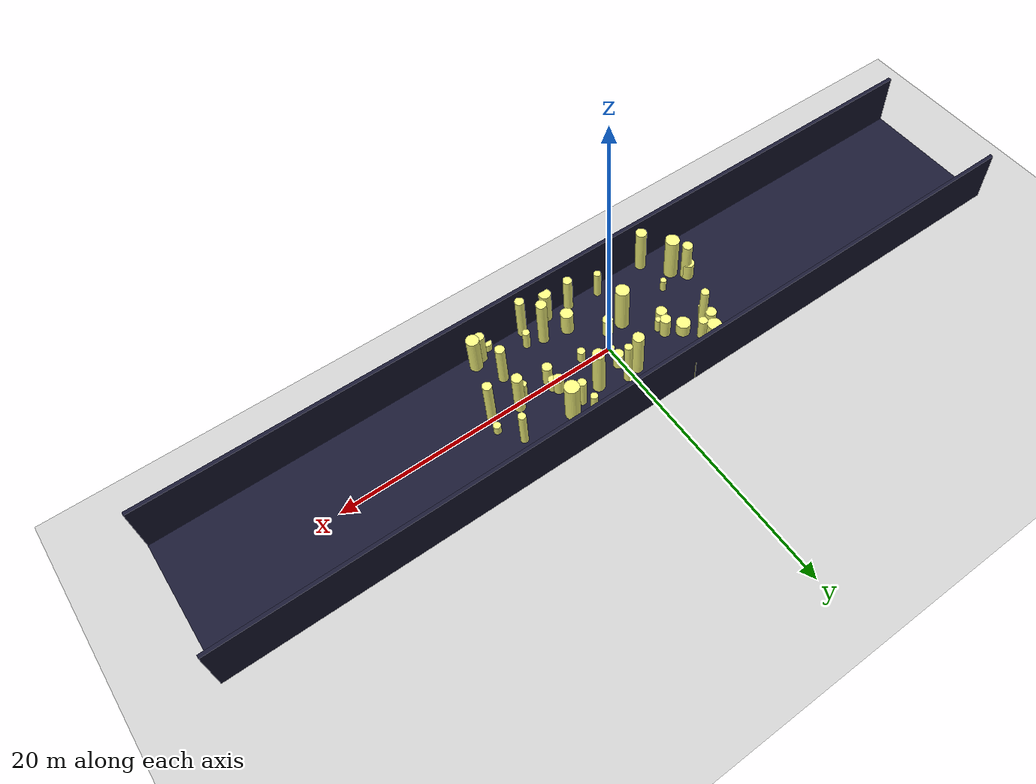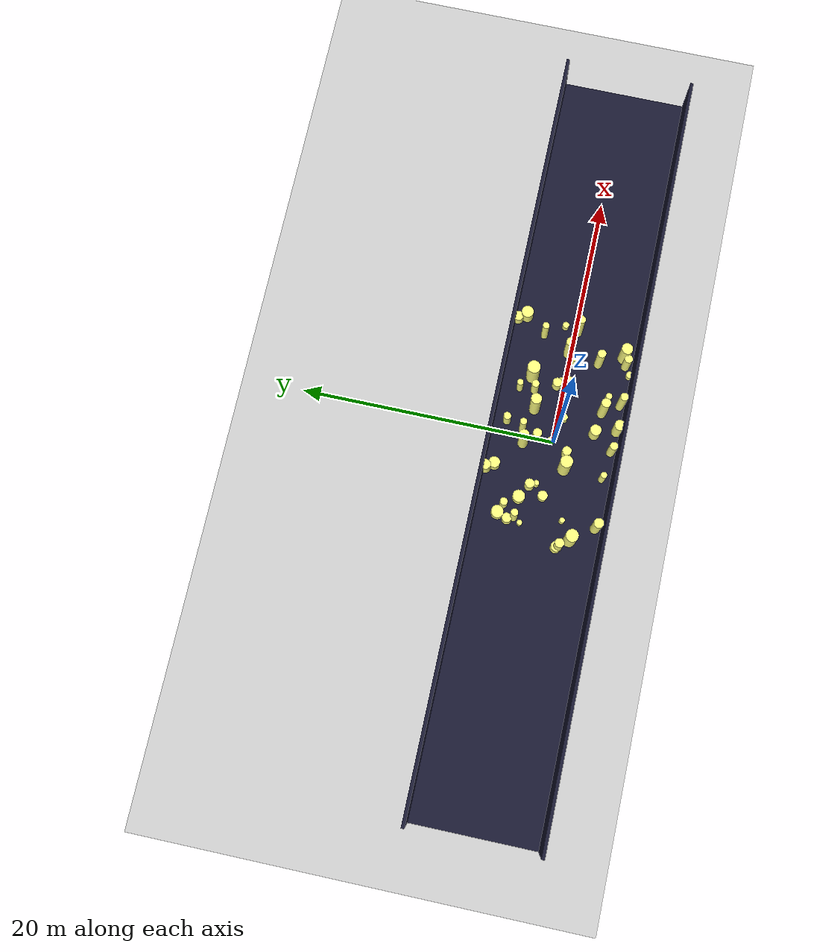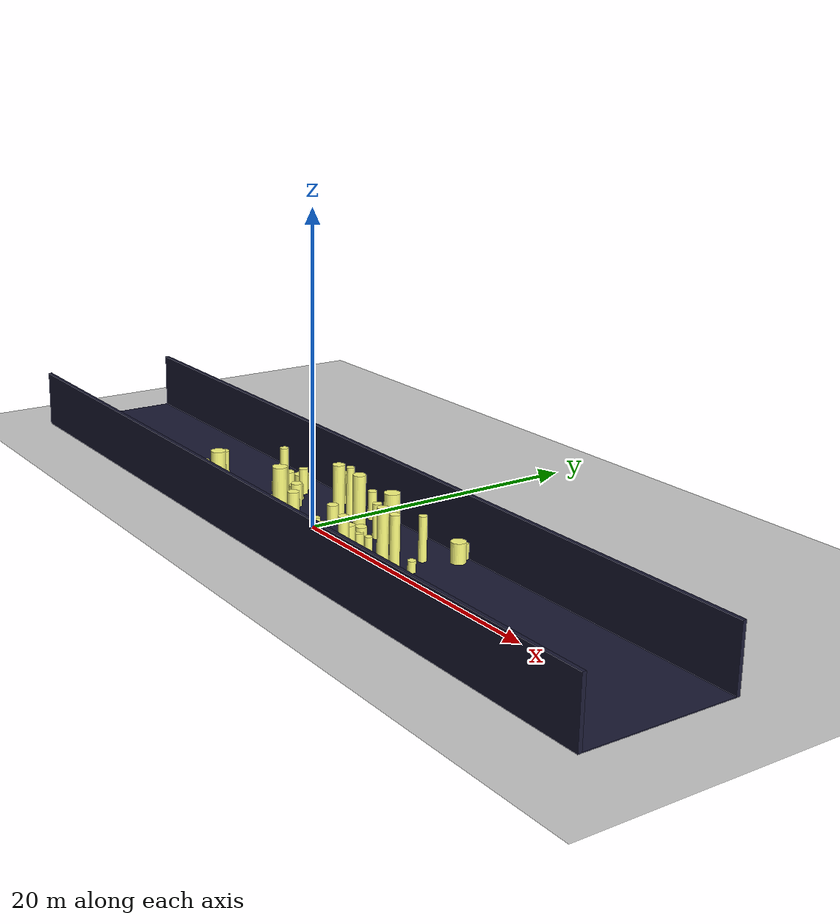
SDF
<sdf version="1.4">
 <world name="default">
  <include><uri>model://ground_plane</uri></include>
  <include><uri>model://sun</uri></include>
  <model name="forest">
   <static>true</static>
   <link name="cylinder0">
    <pose>3.841317215368427 -4.510025102042122 1.7515995705522547 0 0 0</pose>
    <visual name="visual">
     <geometry>
      <cylinder><radius>0.31026531491207887</radius><length>3.5031991411045094</length></cylinder>
     </geometry>
     <material>
      <ambient>0.6 0.6 0.6 1</ambient>
      <diffuse>1 1 0.5 1</diffuse>
      <specular>0 0 0</specular>
      <emissive>0 0 0 1</emissive>
     </material>
    </visual>
    <collision name="collision">
     <geometry>
      <cylinder><radius>0.31026531491207887</radius><length>3.5031991411045094</length></cylinder>
     </geometry>
     <max_contacts>0</max_contacts>
    </collision>
   </link>
   <link name="cylinder2">
    <pose>-5.597948450869204 2.804975082439764 0.8905810715772352 0 0 0</pose>
    <visual name="visual">
     <geometry>
      <cylinder><radius>0.29819938262557866</radius><length>1.7811621431544704</length></cylinder>
     </geometry>
     <material>
      <ambient>0.6 0.6 0.6 1</ambient>
      <diffuse>1 1 0.5 1</diffuse>
      <specular>0 0 0</specular>
      <emissive>0 0 0 1</emissive>
     </material>
    </visual>
    <collision name="collision">
     <geometry>
      <cylinder><radius>0.29819938262557866</radius><length>1.7811621431544704</length></cylinder>
     </geometry>
     <max_contacts>0</max_contacts>
    </collision>
   </link>
   <link name="cylinder4">
    <pose>0.019550161029819435 0.3108359721676308 0.2989481723369702 0 0 0</pose>
    <visual name="visual">
     <geometry>
      <cylinder><radius>0.2081893095561564</radius><length>0.5978963446739404</length></cylinder>
     </geometry>
     <material>
      <ambient>0.6 0.6 0.6 1</ambient>
      <diffuse>1 1 0.5 1</diffuse>
      <specular>0 0 0</specular>
      <emissive>0 0 0 1</emissive>
     </material>
    </visual>
    <collision name="collision">
     <geometry>
      <cylinder><radius>0.2081893095561564</radius><length>0.5978963446739404</length></cylinder>
     </geometry>
     <max_contacts>0</max_contacts>
    </collision>
   </link>
   <link name="cylinder7">
    <pose>3.7708638306672313 2.262818668443485 1.149254246026065 0 0 0</pose>
    <visual name="visual">
     <geometry><cylinder><radius>0.289971947171161</radius><length>2.29850849205213</length></cylinder></geometry>
     <material>
      <ambient>0.6 0.6 0.6 1</ambient>
      <diffuse>1 1 0.5 1</diffuse>
      <specular>0 0 0</specular>
      <emissive>0 0 0 1</emissive>
     </material>
    </visual>
    <collision name="collision">
     <geometry><cylinder><radius>0.289971947171161</radius><length>2.29850849205213</length></cylinder></geometry>
     <max_contacts>0</max_contacts>
    </collision>
   </link>
   <link name="cylinder10">
    <pose>0.91863081633619 3.880131118316367 0.9672206659443383 0 0 0</pose>
    <visual name="visual">
     <geometry>
      <cylinder><radius>0.2948802282345892</radius><length>1.9344413318886766</length></cylinder>
     </geometry>
     <material>
      <ambient>0.6 0.6 0.6 1</ambient>
      <diffuse>1 1 0.5 1</diffuse>
      <specular>0 0 0</specular>
      <emissive>0 0 0 1</emissive>
     </material>
    </visual>
    <collision name="collision">
     <geometry>
      <cylinder><radius>0.2948802282345892</radius><length>1.9344413318886766</length></cylinder>
     </geometry>
     <max_contacts>0</max_contacts>
    </collision>
   </link>
   <link name="cylinder11">
    <pose>-8.076823484715579 -1.7469018621044894 0.7119745542608408 0 0 0</pose>
    <visual name="visual">
     <geometry>
      <cylinder><radius>0.41168028122987677</radius><length>1.4239491085216816</length></cylinder>
     </geometry>
     <material>
      <ambient>0.6 0.6 0.6 1</ambient>
      <diffuse>1 1 0.5 1</diffuse>
      <specular>0 0 0</specular>
      <emissive>0 0 0 1</emissive>
     </material>
    </visual>
    <collision name="collision">
     <geometry>
      <cylinder><radius>0.41168028122987677</radius><length>1.4239491085216816</length></cylinder>
     </geometry>
     <max_contacts>0</max_contacts>
    </collision>
   </link>
   <link name="cylinder12">
    <pose>6.380139031225884 -4.7992953907381875 0.3489111552656734 0 0 0</pose>
    <visual name="visual">
     <geometry>
      <cylinder><radius>0.28228500885628927</radius><length>0.6978223105313468</length></cylinder>
     </geometry>
     <material>
      <ambient>0.6 0.6 0.6 1</ambient>
      <diffuse>1 1 0.5 1</diffuse>
      <specular>0 0 0</specular>
      <emissive>0 0 0 1</emissive>
     </material>
    </visual>
    <collision name="collision">
     <geometry>
      <cylinder><radius>0.28228500885628927</radius><length>0.6978223105313468</length></cylinder>
     </geometry>
     <max_contacts>0</max_contacts>
    </collision>
   </link>
   <link name="cylinder13">
    <pose>2.2621900080426407 1.969604160525682 1.8763601650356239 0 0 0</pose>
    <visual name="visual">
     <geometry>
      <cylinder><radius>0.4143979946371352</radius><length>3.7527203300712477</length></cylinder>
     </geometry>
     <material>
      <ambient>0.6 0.6 0.6 1</ambient>
      <diffuse>1 1 0.5 1</diffuse>
      <specular>0 0 0</specular>
      <emissive>0 0 0 1</emissive>
     </material>
    </visual>
    <collision name="collision">
     <geometry>
      <cylinder><radius>0.4143979946371352</radius><length>3.7527203300712477</length></cylinder>
     </geometry>
     <max_contacts>0</max_contacts>
    </collision>
   </link>
   <link name="cylinder17">
    <pose>1.929898529020484 -0.4303004359131286 0.5025351860580825 0 0 0</pose>
    <visual name="visual">
     <geometry>
      <cylinder><radius>0.2717361799213967</radius><length>1.005070372116165</length></cylinder>
     </geometry>
     <material>
      <ambient>0.6 0.6 0.6 1</ambient>
      <diffuse>1 1 0.5 1</diffuse>
      <specular>0 0 0</specular>
      <emissive>0 0 0 1</emissive>
     </material>
    </visual>
    <collision name="collision">
     <geometry>
      <cylinder><radius>0.2717361799213967</radius><length>1.005070372116165</length></cylinder>
     </geometry>
     <max_contacts>0</max_contacts>
    </collision>
   </link>
   <link name="cylinder19">
    <pose>8.306041038692413 2.3817016673894305 1.445079854383004 0 0 0</pose>
    <visual name="visual">
     <geometry><cylinder><radius>0.258648438098797</radius><length>2.890159708766008</length></cylinder></geometry>
     <material>
      <ambient>0.6 0.6 0.6 1</ambient>
      <diffuse>1 1 0.5 1</diffuse>
      <specular>0 0 0</specular>
      <emissive>0 0 0 1</emissive>
     </material>
    </visual>
    <collision name="collision">
     <geometry><cylinder><radius>0.258648438098797</radius><length>2.890159708766008</length></cylinder></geometry>
     <max_contacts>0</max_contacts>
    </collision>
   </link>
   <link name="cylinder26">
    <pose>0.2309264891450944 1.3479970760436464 0.6541075039447826 0 0 0</pose>
    <visual name="visual">
     <geometry>
      <cylinder><radius>0.35689550213047705</radius><length>1.3082150078895651</length></cylinder>
     </geometry>
     <material>
      <ambient>0.6 0.6 0.6 1</ambient>
      <diffuse>1 1 0.5 1</diffuse>
      <specular>0 0 0</specular>
      <emissive>0 0 0 1</emissive>
     </material>
    </visual>
    <collision name="collision">
     <geometry>
      <cylinder><radius>0.35689550213047705</radius><length>1.3082150078895651</length></cylinder>
     </geometry>
     <max_contacts>0</max_contacts>
    </collision>
   </link>
   <link name="cylinder30">
    <pose>4.462834070754685 0.6286415022368521 0.6777906479163608 0 0 0</pose>
    <visual name="visual">
     <geometry>
      <cylinder><radius>0.35982181179205497</radius><length>1.3555812958327216</length></cylinder>
     </geometry>
     <material>
      <ambient>0.6 0.6 0.6 1</ambient>
      <diffuse>1 1 0.5 1</diffuse>
      <specular>0 0 0</specular>
      <emissive>0 0 0 1</emissive>
     </material>
    </visual>
    <collision name="collision">
     <geometry>
      <cylinder><radius>0.35982181179205497</radius><length>1.3555812958327216</length></cylinder>
     </geometry>
     <max_contacts>0</max_contacts>
    </collision>
   </link>
   <link name="cylinder32">
    <pose>-3.796345316395893 1.1544314318938884 0.7949143617968951 0 0 0</pose>
    <visual name="visual">
     <geometry>
      <cylinder><radius>0.365756457904013</radius><length>1.5898287235937902</length></cylinder>
     </geometry>
     <material>
      <ambient>0.6 0.6 0.6 1</ambient>
      <diffuse>1 1 0.5 1</diffuse>
      <specular>0 0 0</specular>
      <emissive>0 0 0 1</emissive>
     </material>
    </visual>
    <collision name="collision">
     <geometry>
      <cylinder><radius>0.365756457904013</radius><length>1.5898287235937902</length></cylinder>
     </geometry>
     <max_contacts>0</max_contacts>
    </collision>
   </link>
   <link name="cylinder34">
    <pose>-2.6732552180354823 4.131881459659196 0.5983940788976321 0 0 0</pose>
    <visual name="visual">
     <geometry>
      <cylinder><radius>0.43327783691241173</radius><length>1.1967881577952642</length></cylinder>
     </geometry>
     <material>
      <ambient>0.6 0.6 0.6 1</ambient>
      <diffuse>1 1 0.5 1</diffuse>
      <specular>0 0 0</specular>
      <emissive>0 0 0 1</emissive>
     </material>
    </visual>
    <collision name="collision">
     <geometry>
      <cylinder><radius>0.43327783691241173</radius><length>1.1967881577952642</length></cylinder>
     </geometry>
     <max_contacts>0</max_contacts>
    </collision>
   </link>
   <link name="cylinder36">
    <pose>-6.35559475268046 3.1368418222198677 0.5620536814726268 0 0 0</pose>
    <visual name="visual">
     <geometry>
      <cylinder><radius>0.48547790595488055</radius><length>1.1241073629452536</length></cylinder>
     </geometry>
     <material>
      <ambient>0.6 0.6 0.6 1</ambient>
      <diffuse>1 1 0.5 1</diffuse>
      <specular>0 0 0</specular>
      <emissive>0 0 0 1</emissive>
     </material>
    </visual>
    <collision name="collision">
     <geometry>
      <cylinder><radius>0.48547790595488055</radius><length>1.1241073629452536</length></cylinder>
     </geometry>
     <max_contacts>0</max_contacts>
    </collision>
   </link>
   <link name="cylinder37">
    <pose>-3.095924319595884 4.737810121953949 0.9232503737884867 0 0 0</pose>
    <visual name="visual">
     <geometry>
      <cylinder><radius>0.39096043442895345</radius><length>1.8465007475769735</length></cylinder>
     </geometry>
     <material>
      <ambient>0.6 0.6 0.6 1</ambient>
      <diffuse>1 1 0.5 1</diffuse>
      <specular>0 0 0</specular>
      <emissive>0 0 0 1</emissive>
     </material>
    </visual>
    <collision name="collision">
     <geometry>
      <cylinder><radius>0.39096043442895345</radius><length>1.8465007475769735</length></cylinder>
     </geometry>
     <max_contacts>0</max_contacts>
    </collision>
   </link>
   <link name="cylinder39">
    <pose>7.102698243742864 -4.34941484922842 1.265890437416562 0 0 0</pose>
    <visual name="visual">
     <geometry>
      <cylinder><radius>0.3223717352639373</radius><length>2.531780874833124</length></cylinder>
     </geometry>
     <material>
      <ambient>0.6 0.6 0.6 1</ambient>
      <diffuse>1 1 0.5 1</diffuse>
      <specular>0 0 0</specular>
      <emissive>0 0 0 1</emissive>
     </material>
    </visual>
    <collision name="collision">
     <geometry>
      <cylinder><radius>0.3223717352639373</radius><length>2.531780874833124</length></cylinder>
     </geometry>
     <max_contacts>0</max_contacts>
    </collision>
   </link>
   <link name="cylinder44">
    <pose>0.3830671801895775 2.5625183491541783 1.799898482044093 0 0 0</pose>
    <visual name="visual">
     <geometry>
      <cylinder><radius>0.25923744063709525</radius><length>3.599796964088186</length></cylinder>
     </geometry>
     <material>
      <ambient>0.6 0.6 0.6 1</ambient>
      <diffuse>1 1 0.5 1</diffuse>
      <specular>0 0 0</specular>
      <emissive>0 0 0 1</emissive>
     </material>
    </visual>
    <collision name="collision">
     <geometry>
      <cylinder><radius>0.25923744063709525</radius><length>3.599796964088186</length></cylinder>
     </geometry>
     <max_contacts>0</max_contacts>
    </collision>
   </link>
   <link name="cylinder51">
    <pose>-6.780115979278612 1.3118215421467063 0.3928608949409351 0 0 0</pose>
    <visual name="visual">
     <geometry>
      <cylinder><radius>0.21145059637063282</radius><length>0.7857217898818702</length></cylinder>
     </geometry>
     <material>
      <ambient>0.6 0.6 0.6 1</ambient>
      <diffuse>1 1 0.5 1</diffuse>
      <specular>0 0 0</specular>
      <emissive>0 0 0 1</emissive>
     </material>
    </visual>
    <collision name="collision">
     <geometry>
      <cylinder><radius>0.21145059637063282</radius><length>0.7857217898818702</length></cylinder>
     </geometry>
     <max_contacts>0</max_contacts>
    </collision>
   </link>
   <link name="cylinder55">
    <pose>7.7459871634726625 -4.074351131952453 1.4843948495885289 0 0 0</pose>
    <visual name="visual">
     <geometry>
      <cylinder><radius>0.43689139145279654</radius><length>2.9687896991770577</length></cylinder>
     </geometry>
     <material>
      <ambient>0.6 0.6 0.6 1</ambient>
      <diffuse>1 1 0.5 1</diffuse>
      <specular>0 0 0</specular>
      <emissive>0 0 0 1</emissive>
     </material>
    </visual>
    <collision name="collision">
     <geometry>
      <cylinder><radius>0.43689139145279654</radius><length>2.9687896991770577</length></cylinder>
     </geometry>
     <max_contacts>0</max_contacts>
    </collision>
   </link>
   <link name="cylinder71">
    <pose>0.08797585774895111 -4.488098372799972 1.421899643626729 0 0 0</pose>
    <visual name="visual">
     <geometry>
      <cylinder><radius>0.3147950107686442</radius><length>2.843799287253458</length></cylinder>
     </geometry>
     <material>
      <ambient>0.6 0.6 0.6 1</ambient>
      <diffuse>1 1 0.5 1</diffuse>
      <specular>0 0 0</specular>
      <emissive>0 0 0 1</emissive>
     </material>
    </visual>
    <collision name="collision">
     <geometry>
      <cylinder><radius>0.3147950107686442</radius><length>2.843799287253458</length></cylinder>
     </geometry>
     <max_contacts>0</max_contacts>
    </collision>
   </link>
   <link name="cylinder73">
    <pose>9.32625209024728 0.8686492263503265 0.3891782524136886 0 0 0</pose>
    <visual name="visual">
     <geometry>
      <cylinder><radius>0.2536598950467473</radius><length>0.7783565048273772</length></cylinder>
     </geometry>
     <material>
      <ambient>0.6 0.6 0.6 1</ambient>
      <diffuse>1 1 0.5 1</diffuse>
      <specular>0 0 0</specular>
      <emissive>0 0 0 1</emissive>
     </material>
    </visual>
    <collision name="collision">
     <geometry>
      <cylinder><radius>0.2536598950467473</radius><length>0.7783565048273772</length></cylinder>
     </geometry>
     <max_contacts>0</max_contacts>
    </collision>
   </link>
   <link name="cylinder76">
    <pose>-6.701389511142825 2.3363827033485443 0.6730518160234639 0 0 0</pose>
    <visual name="visual">
     <geometry>
      <cylinder><radius>0.3760755214761362</radius><length>1.3461036320469277</length></cylinder>
     </geometry>
     <material>
      <ambient>0.6 0.6 0.6 1</ambient>
      <diffuse>1 1 0.5 1</diffuse>
      <specular>0 0 0</specular>
      <emissive>0 0 0 1</emissive>
     </material>
    </visual>
    <collision name="collision">
     <geometry>
      <cylinder><radius>0.3760755214761362</radius><length>1.3461036320469277</length></cylinder>
     </geometry>
     <max_contacts>0</max_contacts>
    </collision>
   </link>
   <link name="cylinder81">
    <pose>-5.980062850863455 -1.8225590661400712 0.5159791645361815 0 0 0</pose>
    <visual name="visual">
     <geometry>
      <cylinder><radius>0.20665781648490705</radius><length>1.031958329072363</length></cylinder>
     </geometry>
     <material>
      <ambient>0.6 0.6 0.6 1</ambient>
      <diffuse>1 1 0.5 1</diffuse>
      <specular>0 0 0</specular>
      <emissive>0 0 0 1</emissive>
     </material>
    </visual>
    <collision name="collision">
     <geometry>
      <cylinder><radius>0.20665781648490705</radius><length>1.031958329072363</length></cylinder>
     </geometry>
     <max_contacts>0</max_contacts>
    </collision>
   </link>
   <link name="cylinder82">
    <pose>-2.136530101430896 -4.197072623146144 1.1137650867701496 0 0 0</pose>
    <visual name="visual">
     <geometry>
      <cylinder><radius>0.2468443195670016</radius><length>2.2275301735402993</length></cylinder>
     </geometry>
     <material>
      <ambient>0.6 0.6 0.6 1</ambient>
      <diffuse>1 1 0.5 1</diffuse>
      <specular>0 0 0</specular>
      <emissive>0 0 0 1</emissive>
     </material>
    </visual>
    <collision name="collision">
     <geometry>
      <cylinder><radius>0.2468443195670016</radius><length>2.2275301735402993</length></cylinder>
     </geometry>
     <max_contacts>0</max_contacts>
    </collision>
   </link>
   <link name="cylinder85">
    <pose>-4.386464768933827 -0.009927577281788835 0.38760159365203656 0 0 0</pose>
    <visual name="visual">
     <geometry>
      <cylinder><radius>0.38589007914262696</radius><length>0.7752031873040731</length></cylinder>
     </geometry>
     <material>
      <ambient>0.6 0.6 0.6 1</ambient>
      <diffuse>1 1 0.5 1</diffuse>
      <specular>0 0 0</specular>
      <emissive>0 0 0 1</emissive>
     </material>
    </visual>
    <collision name="collision">
     <geometry>
      <cylinder><radius>0.38589007914262696</radius><length>0.7752031873040731</length></cylinder>
     </geometry>
     <max_contacts>0</max_contacts>
    </collision>
   </link>
   <link name="cylinder86">
    <pose>1.8175520618247631 -4.648783486313337 1.2998551610986704 0 0 0</pose>
    <visual name="visual">
     <geometry>
      <cylinder><radius>0.4132822424263275</radius><length>2.5997103221973408</length></cylinder>
     </geometry>
     <material>
      <ambient>0.6 0.6 0.6 1</ambient>
      <diffuse>1 1 0.5 1</diffuse>
      <specular>0 0 0</specular>
      <emissive>0 0 0 1</emissive>
     </material>
    </visual>
    <collision name="collision">
     <geometry>
      <cylinder><radius>0.4132822424263275</radius><length>2.5997103221973408</length></cylinder>
     </geometry>
     <max_contacts>0</max_contacts>
    </collision>
   </link>
   <link name="cylinder89">
    <pose>-0.5854888495264454 2.3207498829452398 1.7743169622292794 0 0 0</pose>
    <visual name="visual">
     <geometry>
      <cylinder><radius>0.3906905005362782</radius><length>3.5486339244585587</length></cylinder>
     </geometry>
     <material>
      <ambient>0.6 0.6 0.6 1</ambient>
      <diffuse>1 1 0.5 1</diffuse>
      <specular>0 0 0</specular>
      <emissive>0 0 0 1</emissive>
     </material>
    </visual>
    <collision name="collision">
     <geometry>
      <cylinder><radius>0.3906905005362782</radius><length>3.5486339244585587</length></cylinder>
     </geometry>
     <max_contacts>0</max_contacts>
    </collision>
   </link>
   <link name="cylinder92">
    <pose>7.229047636451867 0.2708929161744358 1.7413815617817843 0 0 0</pose>
    <visual name="visual">
     <geometry>
      <cylinder><radius>0.3556079910134344</radius><length>3.4827631235635685</length></cylinder>
     </geometry>
     <material>
      <ambient>0.6 0.6 0.6 1</ambient>
      <diffuse>1 1 0.5 1</diffuse>
      <specular>0 0 0</specular>
      <emissive>0 0 0 1</emissive>
     </material>
    </visual>
    <collision name="collision">
     <geometry>
      <cylinder><radius>0.3556079910134344</radius><length>3.4827631235635685</length></cylinder>
     </geometry>
     <max_contacts>0</max_contacts>
    </collision>
   </link>
   <link name="cylinder95">
    <pose>2.9972869299274514 -3.2326229735855314 1.9288559226459152 0 0 0</pose>
    <visual name="visual">
     <geometry>
      <cylinder><radius>0.3528146368979933</radius><length>3.8577118452918304</length></cylinder>
     </geometry>
     <material>
      <ambient>0.6 0.6 0.6 1</ambient>
      <diffuse>1 1 0.5 1</diffuse>
      <specular>0 0 0</specular>
      <emissive>0 0 0 1</emissive>
     </material>
    </visual>
    <collision name="collision">
     <geometry>
      <cylinder><radius>0.3528146368979933</radius><length>3.8577118452918304</length></cylinder>
     </geometry>
     <max_contacts>0</max_contacts>
    </collision>
   </link>
   <link name="cylinder97">
    <pose>9.590681261874998 4.0307013667269285 0.6870085046437567 0 0 0</pose>
    <visual name="visual">
     <geometry>
      <cylinder><radius>0.4712984180641723</radius><length>1.3740170092875135</length></cylinder>
     </geometry>
     <material>
      <ambient>0.6 0.6 0.6 1</ambient>
      <diffuse>1 1 0.5 1</diffuse>
      <specular>0 0 0</specular>
      <emissive>0 0 0 1</emissive>
     </material>
    </visual>
    <collision name="collision">
     <geometry>
      <cylinder><radius>0.4712984180641723</radius><length>1.3740170092875135</length></cylinder>
     </geometry>
     <max_contacts>0</max_contacts>
    </collision>
   </link>
   <link name="cylinder98">
    <pose>1.2514939818564734 -2.9674464957473545 0.9061834877385173 0 0 0</pose>
    <visual name="visual">
     <geometry>
      <cylinder><radius>0.43286544498784063</radius><length>1.8123669754770346</length></cylinder>
     </geometry>
     <material>
      <ambient>0.6 0.6 0.6 1</ambient>
      <diffuse>1 1 0.5 1</diffuse>
      <specular>0 0 0</specular>
      <emissive>0 0 0 1</emissive>
     </material>
    </visual>
    <collision name="collision">
     <geometry>
      <cylinder><radius>0.43286544498784063</radius><length>1.8123669754770346</length></cylinder>
     </geometry>
     <max_contacts>0</max_contacts>
    </collision>
   </link>
   <link name="cylinder100">
    <pose>4.167947537752433 -3.484207874254308 0.7560994774120962 0 0 0</pose>
    <visual name="visual">
     <geometry>
      <cylinder><radius>0.25059482158634255</radius><length>1.5121989548241923</length></cylinder>
     </geometry>
     <material>
      <ambient>0.6 0.6 0.6 1</ambient>
      <diffuse>1 1 0.5 1</diffuse>
      <specular>0 0 0</specular>
      <emissive>0 0 0 1</emissive>
     </material>
    </visual>
    <collision name="collision">
     <geometry>
      <cylinder><radius>0.25059482158634255</radius><length>1.5121989548241923</length></cylinder>
     </geometry>
     <max_contacts>0</max_contacts>
    </collision>
   </link>
   <link name="cylinder108">
    <pose>4.664800987993267 -0.3258502183461056 0.8568579059390881 0 0 0</pose>
    <visual name="visual">
     <geometry>
      <cylinder><radius>0.33124647964847076</radius><length>1.7137158118781761</length></cylinder>
     </geometry>
     <material>
      <ambient>0.6 0.6 0.6 1</ambient>
      <diffuse>1 1 0.5 1</diffuse>
      <specular>0 0 0</specular>
      <emissive>0 0 0 1</emissive>
     </material>
    </visual>
    <collision name="collision">
     <geometry>
      <cylinder><radius>0.33124647964847076</radius><length>1.7137158118781761</length></cylinder>
     </geometry>
     <max_contacts>0</max_contacts>
    </collision>
   </link>
   <link name="cylinder111">
    <pose>4.71584894241056 0.30803067722986466 0.5479736312749238 0 0 0</pose>
    <visual name="visual">
     <geometry>
      <cylinder><radius>0.29837911802167394</radius><length>1.0959472625498476</length></cylinder>
     </geometry>
     <material>
      <ambient>0.6 0.6 0.6 1</ambient>
      <diffuse>1 1 0.5 1</diffuse>
      <specular>0 0 0</specular>
      <emissive>0 0 0 1</emissive>
     </material>
    </visual>
    <collision name="collision">
     <geometry>
      <cylinder><radius>0.29837911802167394</radius><length>1.0959472625498476</length></cylinder>
     </geometry>
     <max_contacts>0</max_contacts>
    </collision>
   </link>
   <link name="cylinder113">
    <pose>3.6858010280258604 3.426396556380956 1.0688678910776555 0 0 0</pose>
    <visual name="visual">
     <geometry>
      <cylinder><radius>0.24165096693171764</radius><length>2.137735782155311</length></cylinder>
     </geometry>
     <material>
      <ambient>0.6 0.6 0.6 1</ambient>
      <diffuse>1 1 0.5 1</diffuse>
      <specular>0 0 0</specular>
      <emissive>0 0 0 1</emissive>
     </material>
    </visual>
    <collision name="collision">
     <geometry>
      <cylinder><radius>0.24165096693171764</radius><length>2.137735782155311</length></cylinder>
     </geometry>
     <max_contacts>0</max_contacts>
    </collision>
   </link>
   <link name="cylinder115">
    <pose>-7.3064682655386015 -2.6716636597969856 1.7468638778175465 0 0 0</pose>
    <visual name="visual">
     <geometry>
      <cylinder><radius>0.48560630186227827</radius><length>3.493727755635093</length></cylinder>
     </geometry>
     <material>
      <ambient>0.6 0.6 0.6 1</ambient>
      <diffuse>1 1 0.5 1</diffuse>
      <specular>0 0 0</specular>
      <emissive>0 0 0 1</emissive>
     </material>
    </visual>
    <collision name="collision">
     <geometry>
      <cylinder><radius>0.48560630186227827</radius><length>3.493727755635093</length></cylinder>
     </geometry>
     <max_contacts>0</max_contacts>
    </collision>
   </link>
   <link name="cylinder119">
    <pose>-6.00242038717424 -4.419090844737985 1.7528598895001601 0 0 0</pose>
    <visual name="visual">
     <geometry>
      <cylinder><radius>0.3787868898361285</radius><length>3.5057197790003203</length></cylinder>
     </geometry>
     <material>
      <ambient>0.6 0.6 0.6 1</ambient>
      <diffuse>1 1 0.5 1</diffuse>
      <specular>0 0 0</specular>
      <emissive>0 0 0 1</emissive>
     </material>
    </visual>
    <collision name="collision">
     <geometry>
      <cylinder><radius>0.3787868898361285</radius><length>3.5057197790003203</length></cylinder>
     </geometry>
     <max_contacts>0</max_contacts>
    </collision>
   </link>
   <link name="cylinder123">
    <pose>4.794174608460654 2.641014886945422 1.6048705963646304 0 0 0</pose>
    <visual name="visual">
     <geometry>
      <cylinder><radius>0.49888839102848914</radius><length>3.2097411927292607</length></cylinder>
     </geometry>
     <material>
      <ambient>0.6 0.6 0.6 1</ambient>
      <diffuse>1 1 0.5 1</diffuse>
      <specular>0 0 0</specular>
      <emissive>0 0 0 1</emissive>
     </material>
    </visual>
    <collision name="collision">
     <geometry>
      <cylinder><radius>0.49888839102848914</radius><length>3.2097411927292607</length></cylinder>
     </geometry>
     <max_contacts>0</max_contacts>
    </collision>
   </link>
   <link name="cylinder127">
    <pose>-0.7348125017229741 -1.1266548750920902 0.7673220729947581 0 0 0</pose>
    <visual name="visual">
     <geometry>
      <cylinder><radius>0.356937931429385</radius><length>1.5346441459895162</length></cylinder>
     </geometry>
     <material>
      <ambient>0.6 0.6 0.6 1</ambient>
      <diffuse>1 1 0.5 1</diffuse>
      <specular>0 0 0</specular>
      <emissive>0 0 0 1</emissive>
     </material>
    </visual>
    <collision name="collision">
     <geometry>
      <cylinder><radius>0.356937931429385</radius><length>1.5346441459895162</length></cylinder>
     </geometry>
     <max_contacts>0</max_contacts>
    </collision>
   </link>
   <link name="cylinder130">
    <pose>-6.446545486948779 1.8379835078899625 1.5809255751984388 0 0 0</pose>
    <visual name="visual">
     <geometry>
      <cylinder><radius>0.2833280677826204</radius><length>3.1618511503968776</length></cylinder>
     </geometry>
     <material>
      <ambient>0.6 0.6 0.6 1</ambient>
      <diffuse>1 1 0.5 1</diffuse>
      <specular>0 0 0</specular>
      <emissive>0 0 0 1</emissive>
     </material>
    </visual>
    <collision name="collision">
     <geometry>
      <cylinder><radius>0.2833280677826204</radius><length>3.1618511503968776</length></cylinder>
     </geometry>
     <max_contacts>0</max_contacts>
    </collision>
   </link>
   <link name="cylinder131">
    <pose>-4.834678730571362 1.7735961522419466 0.5132432894589697 0 0 0</pose>
    <visual name="visual">
     <geometry>
      <cylinder><radius>0.4834515308152763</radius><length>1.0264865789179394</length></cylinder>
     </geometry>
     <material>
      <ambient>0.6 0.6 0.6 1</ambient>
      <diffuse>1 1 0.5 1</diffuse>
      <specular>0 0 0</specular>
      <emissive>0 0 0 1</emissive>
     </material>
    </visual>
    <collision name="collision">
     <geometry>
      <cylinder><radius>0.4834515308152763</radius><length>1.0264865789179394</length></cylinder>
     </geometry>
     <max_contacts>0</max_contacts>
    </collision>
   </link>
   <link name="cylinder132">
    <pose>6.5538747212408595 -0.25753460872947276 0.7876485277212834 0 0 0</pose>
    <visual name="visual">
     <geometry>
      <cylinder><radius>0.23339545050933586</radius><length>1.5752970554425667</length></cylinder>
     </geometry>
     <material>
      <ambient>0.6 0.6 0.6 1</ambient>
      <diffuse>1 1 0.5 1</diffuse>
      <specular>0 0 0</specular>
      <emissive>0 0 0 1</emissive>
     </material>
    </visual>
    <collision name="collision">
     <geometry>
      <cylinder><radius>0.23339545050933586</radius><length>1.5752970554425667</length></cylinder>
     </geometry>
     <max_contacts>0</max_contacts>
    </collision>
   </link>
   <link name="cylinder137">
    <pose>9.216176233078109 4.665562898744916 0.5256136844005073 0 0 0</pose>
    <visual name="visual">
     <geometry>
      <cylinder><radius>0.38085158201008573</radius><length>1.0512273688010145</length></cylinder>
     </geometry>
     <material>
      <ambient>0.6 0.6 0.6 1</ambient>
      <diffuse>1 1 0.5 1</diffuse>
      <specular>0 0 0</specular>
      <emissive>0 0 0 1</emissive>
     </material>
    </visual>
    <collision name="collision">
     <geometry>
      <cylinder><radius>0.38085158201008573</radius><length>1.0512273688010145</length></cylinder>
     </geometry>
     <max_contacts>0</max_contacts>
    </collision>
   </link>
   <link name="cylinder138">
    <pose>-3.57161446417199 0.6460742646485826 0.5883248735123002 0 0 0</pose>
    <visual name="visual">
     <geometry>
      <cylinder><radius>0.20650381547506738</radius><length>1.1766497470246005</length></cylinder>
     </geometry>
     <material>
      <ambient>0.6 0.6 0.6 1</ambient>
      <diffuse>1 1 0.5 1</diffuse>
      <specular>0 0 0</specular>
      <emissive>0 0 0 1</emissive>
     </material>
    </visual>
    <collision name="collision">
     <geometry>
      <cylinder><radius>0.20650381547506738</radius><length>1.1766497470246005</length></cylinder>
     </geometry>
     <max_contacts>0</max_contacts>
    </collision>
   </link>
   <link name="cylinder139">
    <pose>-7.997458797769642 -1.8756873176168543 1.5887143391807395 0 0 0</pose>
    <visual name="visual">
     <geometry>
      <cylinder><radius>0.35199248189700905</radius><length>3.177428678361479</length></cylinder>
     </geometry>
     <material>
      <ambient>0.6 0.6 0.6 1</ambient>
      <diffuse>1 1 0.5 1</diffuse>
      <specular>0 0 0</specular>
      <emissive>0 0 0 1</emissive>
     </material>
    </visual>
    <collision name="collision">
     <geometry>
      <cylinder><radius>0.35199248189700905</radius><length>3.177428678361479</length></cylinder>
     </geometry>
     <max_contacts>0</max_contacts>
    </collision>
   </link>
   <link name="cylinder141">
    <pose>-1.9711122409609807 -1.1900758673512901 1.824024351245311 0 0 0</pose>
    <visual name="visual">
     <geometry>
      <cylinder><radius>0.4777443117707741</radius><length>3.648048702490622</length></cylinder>
     </geometry>
     <material>
      <ambient>0.6 0.6 0.6 1</ambient>
      <diffuse>1 1 0.5 1</diffuse>
      <specular>0 0 0</specular>
      <emissive>0 0 0 1</emissive>
     </material>
    </visual>
    <collision name="collision">
     <geometry>
      <cylinder><radius>0.4777443117707741</radius><length>3.648048702490622</length></cylinder>
     </geometry>
     <max_contacts>0</max_contacts>
    </collision>
   </link>
   <link name="cylinder145">
    <pose>6.848380528123911 -2.22905421361836 1.6678822928966555 0 0 0</pose>
    <visual name="visual">
     <geometry>
      <cylinder><radius>0.3277420440976778</radius><length>3.335764585793311</length></cylinder>
     </geometry>
     <material>
      <ambient>0.6 0.6 0.6 1</ambient>
      <diffuse>1 1 0.5 1</diffuse>
      <specular>0 0 0</specular>
      <emissive>0 0 0 1</emissive>
     </material>
    </visual>
    <collision name="collision">
     <geometry>
      <cylinder><radius>0.3277420440976778</radius><length>3.335764585793311</length></cylinder>
     </geometry>
     <max_contacts>0</max_contacts>
    </collision>
   </link>
   <link name="cylinder148">
    <pose>9.072443052476757 -0.18332702232020903 1.8596822586136093 0 0 0</pose>
    <visual name="visual">
     <geometry>
      <cylinder><radius>0.3140467557027739</radius><length>3.7193645172272185</length></cylinder>
     </geometry>
     <material>
      <ambient>0.6 0.6 0.6 1</ambient>
      <diffuse>1 1 0.5 1</diffuse>
      <specular>0 0 0</specular>
      <emissive>0 0 0 1</emissive>
     </material>
    </visual>
    <collision name="collision">
     <geometry>
      <cylinder><radius>0.3140467557027739</radius><length>3.7193645172272185</length></cylinder>
     </geometry>
     <max_contacts>0</max_contacts>
    </collision>
   </link>
   <link name="cube0">
    <pose>0 5.0 2.0 0 0 0</pose>
    <visual name="visual">
     <geometry><box><size>60.0 0.25 4.0</size></box></geometry>
     <material>
      <ambient>0.1 0.1 0.1 1</ambient>
      <diffuse>0.1 0.1 0.2 1</diffuse>
      <specular>0 0 0</specular>
      <emissive>0 0 0 1</emissive>
     </material>
    </visual>
    <collision name="collision">
     <geometry><box><size>60.0 0.25 4.0</size></box></geometry>
     <max_contacts>0</max_contacts>
    </collision>
   </link>
   <link name="cube1">
    <pose>0 -5.0 2.0 0 0 0</pose>
    <visual name="visual">
     <geometry><box><size>60.0 0.25 4.0</size></box></geometry>
     <material>
      <ambient>0.1 0.1 0.1 1</ambient>
      <diffuse>0.1 0.1 0.2 1</diffuse>
      <specular>0 0 0</specular>
      <emissive>0 0 0 1</emissive>
     </material>
    </visual>
    <collision name="collision">
     <geometry><box><size>60.0 0.25 4.0</size></box></geometry>
     <max_contacts>0</max_contacts>
    </collision>
   </link>
   <link name="cube2">
    <pose>0 0 0.03125 0 0 0</pose>
    <visual name="visual">
     <geometry><box><size>60.0 10 0.0625</size></box></geometry>
     <material>
      <ambient>0.1 0.1 0.1 1</ambient>
      <diffuse>0.1 0.1 0.2 1</diffuse>
      <specular>0 0 0</specular>
      <emissive>0 0 0 1</emissive>
     </material>
    </visual>
    <collision name="collision">
     <geometry><box><size>60.0 10 0.0625</size></box></geometry>
     <max_contacts>0</max_contacts>
    </collision>
   </link>
  </model>
 </world>
</sdf>
